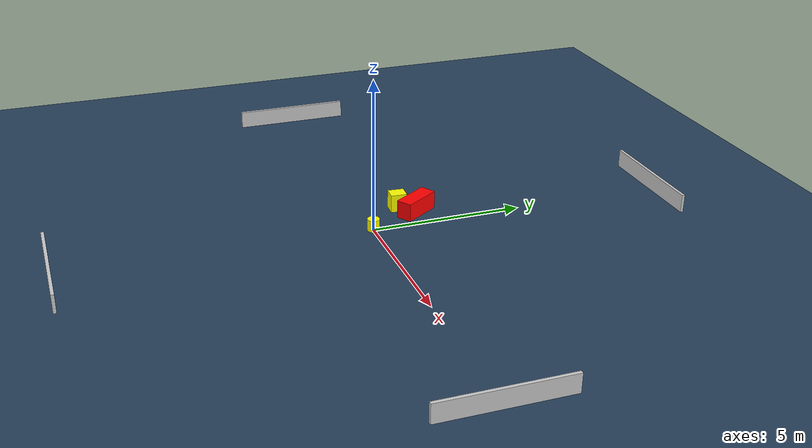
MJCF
<?xml version="1.0" ?>
<mujoco model="generated_environment">
  <option timestep="0.01" integrator="RK4" cone="elliptic"/>
  <default>
    <geom density="1"/>
  </default>
  <asset>
    <texture builtin="gradient" height="3072" name="skybox" rgb1="0.3 0.5 0.7" rgb2="0 0 0" type="skybox" width="512"/>
    <texture builtin="checker" height="300" name="groundplane" rgb1="0.2 0.3 0.4" rgb2="0.1 0.2 0.3" type="2d" width="300"/>
    <material name="groundplane" reflectance="0.2" texrepeat="5 5" texture="groundplane"/>
  </asset>
  <worldbody>
    <light dir="0 0 -1" directional="true" pos="0 0 1.5"/>
    <geom condim="3" friction="0.5 0.005 0.001" material="groundplane" name="floor" pos="0 0 0" size="0 0 0.05" type="plane"/>
    <body name="walls">
      <geom name="wall_1" condim="4" pos="-10.0 0.0 0.3" rgba="0.800000011920929 0.800000011920929 0.800000011920929 1.0" size="0.05 2.0 0.3" type="box"/>
      <geom name="wall_2" condim="4" pos="10.0 0.0 0.3" rgba="0.800000011920929 0.800000011920929 0.800000011920929 1.0" size="0.05 2.0 0.3" type="box"/>
      <geom name="wall_3" condim="4" pos="0.0 -10.0 0.3" rgba="0.800000011920929 0.800000011920929 0.800000011920929 1.0" size="2.0 0.05 0.3" type="box"/>
      <geom name="wall_4" condim="4" pos="0.0 10.0 0.3" rgba="0.800000011920929 0.800000011920929 0.800000011920929 1.0" size="2.0 0.05 0.3" type="box"/>
    </body>
    <body name="robot">
      <joint name="joint_x" type="slide" pos="0 0 0" axis="1 0 0"/>
      <joint name="joint_y" type="slide" pos="0 0 0" axis="0 1 0"/>
      <geom name="robot" type="cylinder" pos="0.0 0.0 0.2" size="0.2 0.2 0.0" mass="5.0" friction="1.0 0.005 0.0001" condim="4" rgba="1.0 1.0 0.0 1.0"/>
    </body>
    <body name="obstacle_1_movable">
      <geom name="obstacle_1_movable" condim="4" pos="-1.216668648244017 1.232005336138767 0.3" euler="0 0 176.4611012006422" friction="0.0 0.005 0.001" rgba="1.0 1.0 0.0 1.0" size="0.2252085210800125 0.2671627857841462 0.3" type="box" mass="0.1"/>
      <joint type="free"/>
    </body>
    <body name="obstacle_2_static">
      <geom name="obstacle_2_static" condim="4" pos="-0.7607828983482712 1.7220596190072874 0.3" euler="0 0 33.0842991172735" friction="0.0 0.005 0.001" rgba="1.0 0.0 0.0 1.0" size="0.26358780297000234 0.6666889747132578 0.3" type="box"/>
    </body>
  </worldbody>
  <actuator>
    <motor name="actuator_x" joint="joint_x" gear="1" ctrlrange="-1 1"/>
    <motor name="actuator_y" joint="joint_y" gear="1" ctrlrange="-1 1"/>
  </actuator>
</mujoco>
